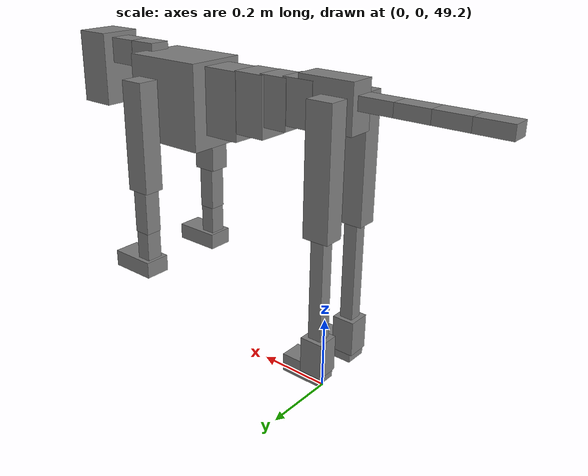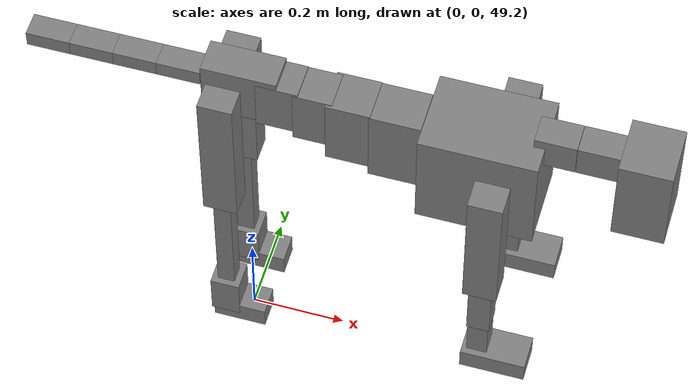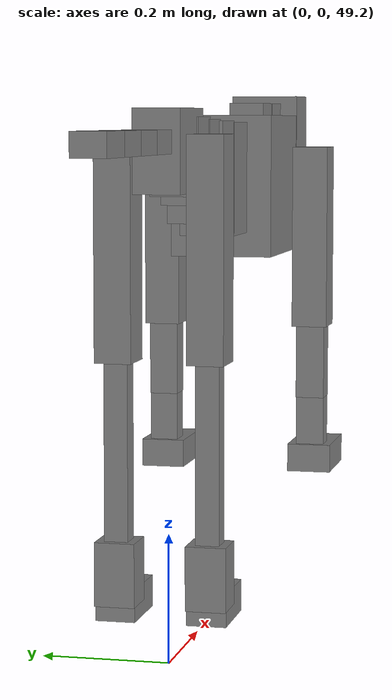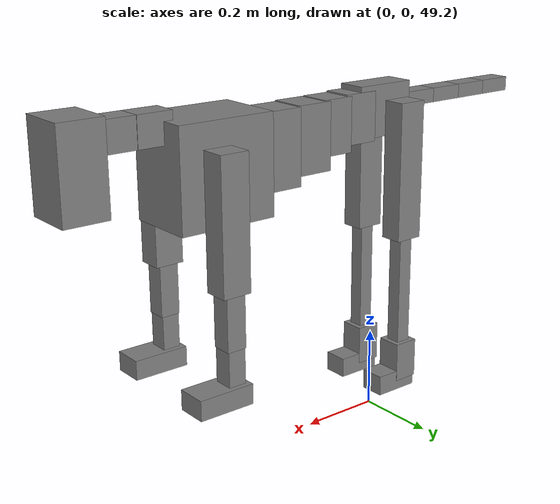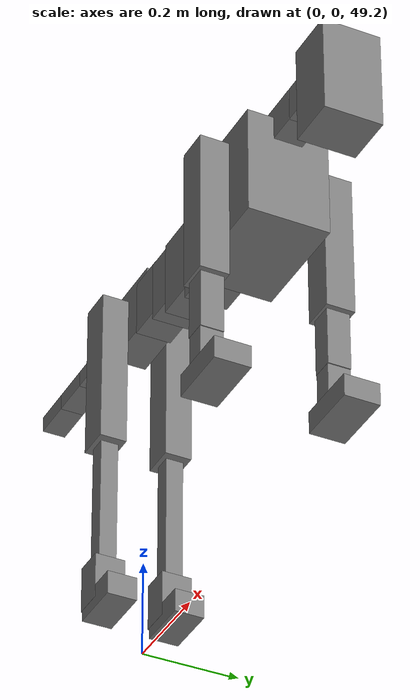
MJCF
<mujoco model="dog">

    <default>
        <joint armature="0.02" stiffness="1" damping="0.2" limited="true"/>
        <geom condim="3" friction="1 0.05 0.05" margin="0.01"/>
        <motor ctrllimited="true" ctrlrange="-1.0 1.0" forcelimited="true" gear="50"/>
    </default>

    <compiler inertiafromgeom="true" angle="radian"/>

    <option timestep="0.016" iterations="50" tolerance="1e-10" solver="Newton" jacobian="dense" cone="pyramidal"/>

    <size nconmax="20000" njmax="60000" nstack="5000000"/>
    <visual>
        <map force="0.1" zfar="30"/>
        <rgba haze="0.15 0.25 0.35 1"/>
        <quality shadowsize="2048"/>
        <global offwidth="800" offheight="800"/>
    </visual>

    <asset>
        <texture type="skybox" builtin="gradient" rgb1="0.3 0.5 0.7" rgb2="0 0 0" width="512" height="512"/>
        <texture name="texplane" type="2d" builtin="checker" rgb1=".2 .3 .4" rgb2=".1 0.15 0.2" width="512" height="512"
                 mark="cross" markrgb=".8 .8 .8"/>
        <texture name="texgeom" type="cube" builtin="flat" mark="cross" width="127" height="1278" rgb1="0.8 0.6 0.4"
                 rgb2="0.8 0.6 0.4" markrgb="1 1 1" random="0.01"/>

        <material name="matplane" reflectance="0.3" texture="texplane" texrepeat="1 1" texuniform="true"/>
        <material name="matgeom" texture="texgeom" texuniform="true" rgba="0.8 0.6 .4 1"/>
    </asset>

    <worldbody>
        <geom name="floor" pos="0 0 0" size="0 0 .25" type="plane" material="matplane" condim="3"/>

        <light directional="false" diffuse=".2 .2 .2" specular="0 0 0" pos="0 0 5" dir="0 0 -1" castshadow="false"/>
        <light mode="targetbodycom" target="torso" directional="false" diffuse=".8 .8 .8" specular="0.3 0.3 0.3"
               pos="0 0 4.0" dir="0 0 -1"/>

        <body name="root" pos="0 0 50">
            <freejoint name="root_1"/>
            <geom type="box" pos="0 0 -0.02" size="0.0774  0.0358  0.063" density="2030"/>

            <body name="spine1" pos="0.054 0 0">
                <joint name="spine1_y" axis="0 1 0" range="0 0.7" limited="true"/>
                <geom type="box" pos="0.02375 0 -0.03" size="0.04375  0.0375  0.05985" density="2030"/>

                <body name="spine2" pos="0.0612 0 0">
                    <joint name="spine2_y" axis="0 1 0" range="-0.15 0.15" limited="true"/>
                    <geom type="box" pos="0.03555  0  -0.04" size="0.04055  0.039  0.06615" density="2030"/>

                    <body name="spine3" pos="0.0730 0 0">
                        <joint name="spine3_y" axis="0 1 0" range="-0.15 0.15" limited="true"/>
                        <geom type="box" pos="0.03555  0  -0.057" size="0.04555  0.0445  0.081" density="2030"/>

                        <body name="spine4" pos="0.0780 0 0">
                            <joint name="spine4_y" axis="0 1 0" range="-0.15 0.15" limited="true"/>
                            <geom type="box" pos="0.05265  0  -0.07" size="0.05265  0.045  0.09135" density="2030"/>

                            <body name="torso" pos="0.1082 0 0">
                                <joint name="torso_y" axis="0 1 0" range="-0.15 0.15" limited="true"/>
                                <geom type="box" pos="0.11925  0  -0.085" size="0.11925  0.085  0.11745"
                                      density="2030"/>

                                <body name="neck1" pos="0.2160  0   0.0180">
                                    <joint name="neck1_y" axis="0 1 0" range="-1.2  -1" limited="true"/>
                                    <geom type="box" pos="0.0423  0  0" size="0.0423  0.03  0.036" density="2325"/>

                                    <body name="neck2" pos="0.0853  0  0">
                                        <joint name="neck2_y" axis="0 1 0" range="0.1  0" limited="true"/>
                                        <geom type="box" pos="0.0423  0  0" size="0.0423  0.03  0.036" density="2325"/>

                                        <body name="head" pos="0.0853  0  0">
                                            <joint name="head_y" axis="0 1 0" range="-0.3  -0.2" limited="true"/>
                                            <geom type="box" pos="0.0531  0  -0.055" size="0.0531  0.06  0.1044"
                                                  density="4030"/>

                                        </body>
                                    </body>
                                </body>

                                <body name="front_shoulder" pos="0.156  0   -0.0480">
                                    <joint name="front_shoulder_y" axis="0 1 0" range="-1 1.5" limited="true"/>
                                    <geom type="box" pos="0 0.13 -0.1274" size="0.0349  0.0299  0.1540" density="1158"/>
                                    <geom type="box" pos="0 -0.13 -0.1274" size="0.0349  0.0299  0.1540"
                                          density="1158"/>

                                    <body name="front_elbow" pos="0  0  -0.2548">
                                        <joint name="front_elbow_y" axis="0 1 0" range="-2 0" limited="true"/>
                                        <geom type="box" pos="0 0.13 -0.0755" size="0.0236  0.0241  0.0755"
                                              density="1081"/>
                                        <geom type="box" pos="0 -0.13 -0.0755" size="0.0236  0.0241  0.0755"
                                              density="1081"/>

                                        <body name="front_wrist" pos="0  0  -0.1509">
                                            <joint name="front_wrist_y" axis="0 1 0" range="-0.2 0" limited="true"/>
                                            <geom type="box" pos="0 0.13 -0.0483" size="0.0213  0.0237  0.0615"
                                                  density="1664"/>
                                            <geom type="box" pos="0 -0.13 -0.0483" size="0.0213  0.0237  0.0615"
                                                  density="1664"/>

                                            <body name="front_finger_end" pos="0  0  -0.0966">
                                                <joint name="front_finger_y" axis="0 1 0" range="-0.4 1"
                                                       limited="true"/>
                                                <geom type="box" pos="0.0370  0.13  -0.0087"
                                                      size="0.0679  0.0370  0.0237" density="1515"/>
                                                <geom type="box" pos="0.0370  -0.13  -0.0087"
                                                      size="0.0679  0.0370  0.0237" density="1515"/>

                                            </body>

                                        </body>
                                    </body>
                                </body>

                            </body>
                        </body>
                    </body>
                </body>
            </body>

            <body name="back_hip" pos="-0.03 0 -0.018">
                <joint name="back_hip_y" axis="0 1 0" range="-1.5 0.3" limited="true"/>
                <geom type="box" pos="0 0.07 -0.1465" size="0.0357  0.0280  0.1693" density="1154"/>
                <geom type="box" pos="0 -0.07 -0.1465" size="0.0357  0.0280  0.1693" density="1154"/>

                <body name="back_knee" pos="0  0  -0.2930">
                    <joint name="back_knee_y" axis="0 1 0" range="0 2.8" limited="true"/>
                    <geom type="box" pos="0 0.07 -0.1525" size="0.0184  0.0181  0.1681" density="1227"/>
                    <geom type="box" pos="0 -0.07 -0.1525" size="0.0184  0.0181  0.1681" density="1227"/>

                    <body name="back_ankle" pos="0  0  -0.3051">
                        <joint name="back_ankle_y" axis="0 1 0" range="-2.2 0" limited="true"/>
                        <geom type="box" pos="0 0.07 -0.0377" size="0.0309  0.0309  0.0489" density="1284"/>
                        <geom type="box" pos="0 -0.07 -0.0377" size="0.0309  0.0309  0.0489" density="1284"/>

                        <body name="back_toe_end" pos="0  0  -0.0753">
                            <joint name="back_toe_y" axis="0 1 0" range="-0.4 1" limited="true"/>
                            <geom type="box" pos="0.0306  0.07  -0.0097" size="0.0561  0.0306  0.0247" density="1515"/>
                            <geom type="box" pos="0.0306  -0.07  -0.0097" size="0.0561  0.0306  0.0247" density="1515"/>

                        </body>
                    </body>
                </body>
            </body>

            <body name="tail1" pos="-0.074 0 -0.006">
                <joint name="tail1_y" axis="0 1 0" range="-0.2 0.2" limited="true"/>
                <geom type="box" pos="-0.0536  0  0" size="0.045  0.025  0.0175" density="1587"/>

                <body name="tail2" pos="-0.09 0 0">
                    <joint name="tail2_y" axis="0 1 0" range="-0.2 0.2" limited="true"/>
                    <geom type="box" pos="-0.0536  0  0" size="0.045  0.025  0.0175" density="1587"/>

                    <body name="tail3" pos="-0.09 0 0">
                        <joint name="tail3_y" axis="0 1 0" range="-0.2 0.2" limited="true"/>
                        <geom type="box" pos="-0.0536  0  0" size="0.045  0.025  0.0175" density="1587"/>

                        <body name="tail4" pos="-0.09 0 0">
                            <joint name="tail4_y" axis="0 1 0" range="-0.2 0.2" limited="true"/>
                            <geom type="box" pos="-0.0536  0  0" size="0.045  0.025  0.0175" density="1587"/>

                        </body>
                    </body>
                </body>
            </body>
        </body>
    </worldbody>

    <actuator>
        <motor joint="spine1_y" forcerange="-150 150     "/>
        <motor joint="spine2_y" forcerange="-150 150     "/>
        <motor joint="spine3_y" forcerange="-150 150     "/>
        <motor joint="spine4_y" forcerange="-150 150     "/>
        <motor joint="torso_y" forcerange="-150 150     "/>
        <motor joint="neck1_y" forcerange="-100 100       "/>
        <motor joint="neck2_y" forcerange="-100 100       "/>
        <motor joint="head_y" forcerange="-150 150       "/>
        <motor joint="front_shoulder_y" forcerange="-171.59 127.41"/>
        <motor joint="front_elbow_y" forcerange="-169.23 106.21"/>
        <motor joint="front_wrist_y" forcerange="-100.31 89.30"/>
        <motor joint="front_finger_y" forcerange="-78.77 78.71"/>
        <motor joint="back_hip_y" forcerange="-240.60 332.58"/>
        <motor joint="back_knee_y" forcerange="-200.37 263.58"/>
        <motor joint="back_angle_y" forcerange="-202.16 191.51"/>
        <motor joint="back_toe_y" forcerange="-74.22 90.39"/>
        <motor joint="tail1_y" forcerange="-50 50     "/>
        <motor joint="tail2_y" forcerange="-50 50     "/>
        <motor joint="tail3_y" forcerange="-50 50     "/>
        <motor joint="tail4_y" forcerange="-50 50     "/>
    </actuator>
</mujoco>
